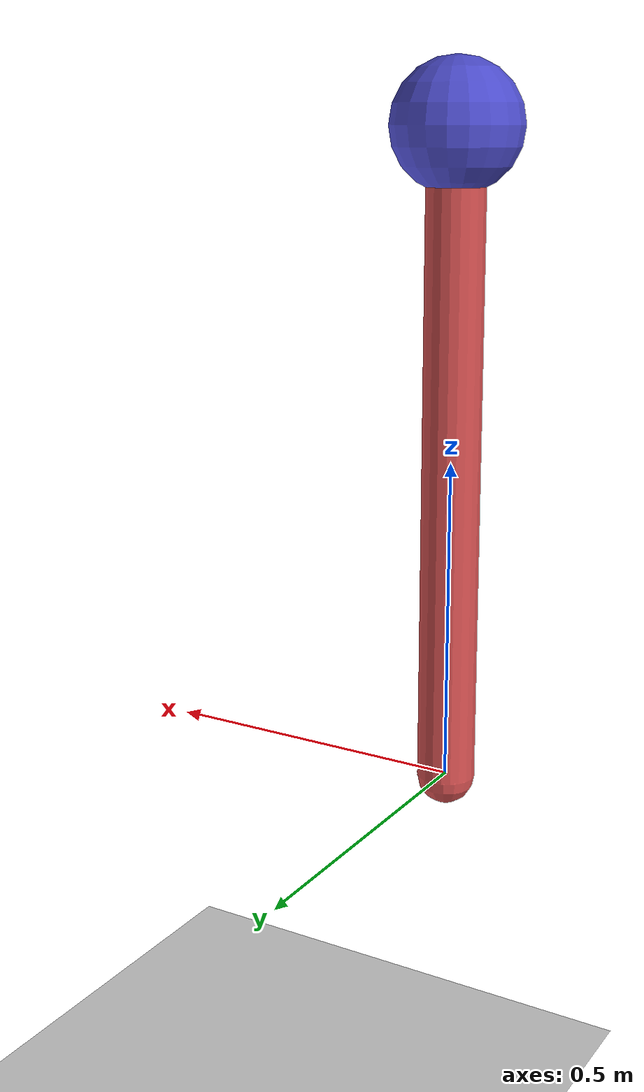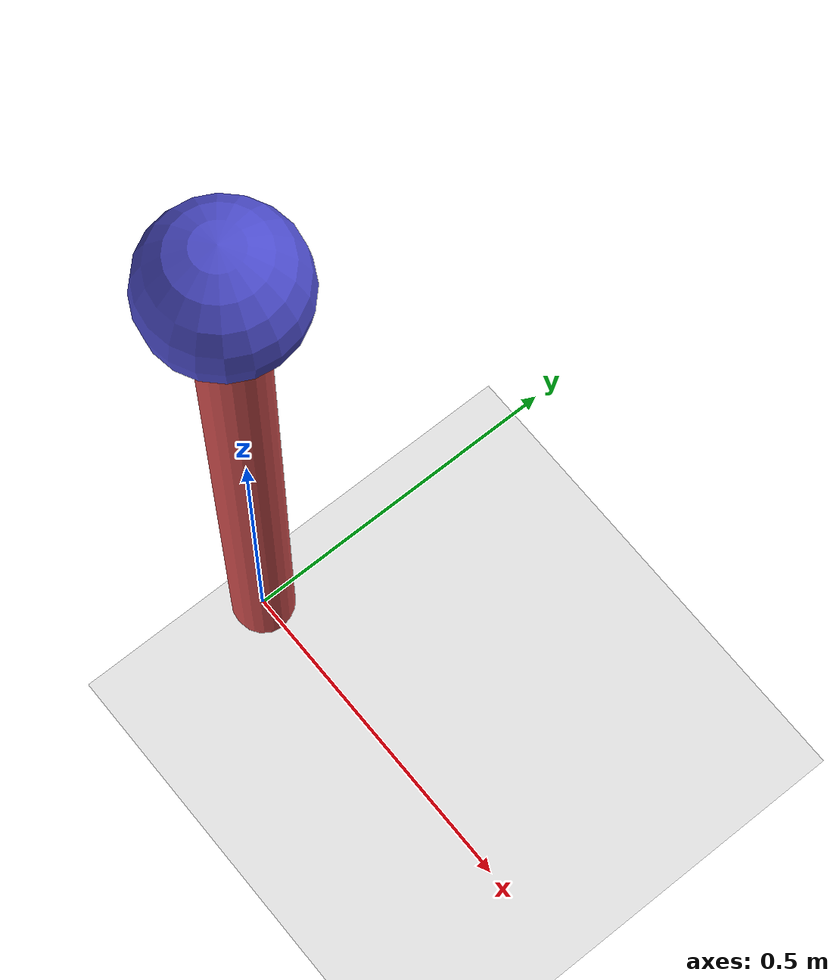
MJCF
<mujoco model="simple_pendulum">
  <option timestep="0.01" integrator="RK4">
    <flag energy="enable"/>
  </option>

  <default>
    <geom rgba=".8 .6 .4 1"/>
  </default>

  <worldbody>
    <light name="light" pos="0 0 6"/>
    <camera name="fixed" pos="0 -3 1" zaxis="0 -1 0"/>
    <camera name="track" mode="track" pos="0 -2 1"/>

    <geom name="floor" pos="0 0 -.5" size="2 2 .1" type="plane" rgba=".9 .9 .9 1"/>

    <body name="pole" pos="0 0 0">
      <joint name="hinge" type="hinge" axis="0 1 0" damping="0.05"/>
      <geom name="pole" type="capsule" fromto="0 0 0 0 0 1" size="0.045" mass="1.0" rgba=".8 .3 .3 1"/>
      <geom name="tip" type="sphere" pos="0 0 1" size="0.1" mass="0.1" rgba=".3 .3 .8 1"/>
    </body>
  </worldbody>

  <actuator>
    <motor name="torque" joint="hinge" gear="2" ctrllimited="true" ctrlrange="-5 5"/>
  </actuator>
</mujoco>
